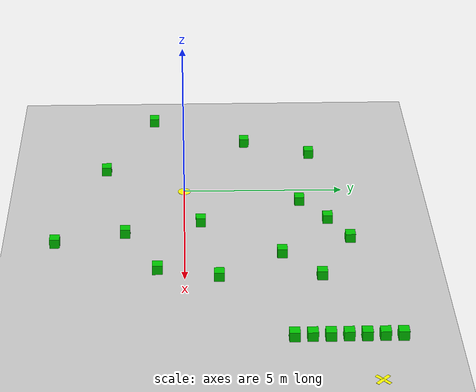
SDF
<sdf version="1.10">
 <world name="random_boxes_world">
  <plugin filename="gz-sim-physics-system" name="gz::sim::systems::Physics"/>
  <plugin filename="gz-sim-user-commands-system" name="gz::sim::systems::UserCommands"/>
  <plugin filename="gz-sim-scene-broadcaster-system" name="gz::sim::systems::SceneBroadcaster"/>
  <plugin filename="gz-sim-sensors-system" name="gz::sim::systems::Sensors">
   <render_engine>ogre2</render_engine>
  </plugin>
  <plugin filename="gz-sim-imu-system" name="gz::sim::systems::Imu"/>
  <plugin filename="gz-sim-magnetometer-system" name="gz::sim::systems::Magnetometer"/>
  <plugin filename="gz-sim-navsat-system" name="gz::sim::systems::NavSat"/>
  <spherical_coordinates>
   <surface_model>EARTH_WGS84</surface_model>
   <latitude_deg>-25.33057507763572</latitude_deg>
   <longitude_deg>-57.51813474688503</longitude_deg>
   <elevation>80.0</elevation>
   <heading_deg>0</heading_deg>
  </spherical_coordinates>
  <physics name="1ms" type="ignored">
   <max_step_size>0.001</max_step_size>
   <real_time_factor>1</real_time_factor>
   <real_time_update_rate>1000</real_time_update_rate>
  </physics>
  <gravity>0 0 -9.8</gravity>
  <scene><ambient>0.4 0.4 0.4 1</ambient><background>0.7 0.7 0.7 1</background><shadows>true</shadows></scene>
  <model name="ground_plane">
   <static>true</static>
   <link name="link">
    <collision name="collision">
     <geometry><plane><normal>0 0 1</normal><size>100 100</size></plane></geometry>
    </collision>
    <visual name="visual">
     <geometry><plane><normal>0 0 1</normal><size>100 100</size></plane></geometry>
     <material><diffuse>0.8 0.8 0.8 1</diffuse></material>
    </visual>
   </link>
  </model>
  <model name="box_A">
   <static>true</static>
   <pose>-3 2 0.15 0 0 0</pose>
   <link name="link">
    <collision name="collision"><geometry><box><size>0.3 0.3 0.3</size></box></geometry></collision>
    <visual name="visual">
     <geometry><box><size>0.3 0.3 0.3</size></box></geometry>
     <material><diffuse>0 0.8 0 1</diffuse></material>
    </visual>
   </link>
  </model>
  <model name="box_B">
   <static>true</static>
   <pose>-1.2 -2.5 0.15 0 0 0</pose>
   <link name="link">
    <collision name="collision"><geometry><box><size>0.3 0.3 0.3</size></box></geometry></collision>
    <visual name="visual">
     <geometry><box><size>0.3 0.3 0.3</size></box></geometry>
     <material><diffuse>0 0.8 0 1</diffuse></material>
    </visual>
   </link>
  </model>
  <model name="box_C">
   <static>true</static>
   <pose>2.6 -1.8 0.15 0 0 0</pose>
   <link name="link">
    <collision name="collision"><geometry><box><size>0.3 0.3 0.3</size></box></geometry></collision>
    <visual name="visual">
     <geometry><box><size>0.3 0.3 0.3</size></box></geometry>
     <material><diffuse>0 0.8 0 1</diffuse></material>
    </visual>
   </link>
  </model>
  <model name="box_D">
   <static>true</static>
   <pose>3.8 2.9 0.15 0 0 0</pose>
   <link name="link">
    <collision name="collision"><geometry><box><size>0.3 0.3 0.3</size></box></geometry></collision>
    <visual name="visual">
     <geometry><box><size>0.3 0.3 0.3</size></box></geometry>
     <material><diffuse>0 0.8 0 1</diffuse></material>
    </visual>
   </link>
  </model>
  <model name="box_E">
   <static>true</static>
   <pose>0.8 3.6 0.15 0 0 0</pose>
   <link name="link">
    <collision name="collision"><geometry><box><size>0.3 0.3 0.3</size></box></geometry></collision>
    <visual name="visual">
     <geometry><box><size>0.3 0.3 0.3</size></box></geometry>
     <material><diffuse>0 0.8 0 1</diffuse></material>
    </visual>
   </link>
  </model>
  <model name="box_F">
   <static>true</static>
   <pose>-4.5 -1.0 0.15 0 0 0</pose>
   <link name="link">
    <collision name="collision"><geometry><box><size>0.3 0.3 0.3</size></box></geometry></collision>
    <visual name="visual">
     <geometry><box><size>0.3 0.3 0.3</size></box></geometry>
     <material><diffuse>0 0.8 0 1</diffuse></material>
    </visual>
   </link>
  </model>
  <model name="box_G">
   <static>true</static>
   <pose>-2.2 4.1 0.15 0 0 0</pose>
   <link name="link">
    <collision name="collision"><geometry><box><size>0.3 0.3 0.3</size></box></geometry></collision>
    <visual name="visual">
     <geometry><box><size>0.3 0.3 0.3</size></box></geometry>
     <material><diffuse>0 0.8 0 1</diffuse></material>
    </visual>
   </link>
  </model>
  <model name="box_H">
   <static>true</static>
   <pose>1.9 4.4 0.15 0 0 0</pose>
   <link name="link">
    <collision name="collision"><geometry><box><size>0.3 0.3 0.3</size></box></geometry></collision>
    <visual name="visual">
     <geometry><box><size>0.3 0.3 0.3</size></box></geometry>
     <material><diffuse>0 0.8 0 1</diffuse></material>
    </visual>
   </link>
  </model>
  <model name="box_I">
   <static>true</static>
   <pose>4.6 -0.8 0.15 0 0 0</pose>
   <link name="link">
    <collision name="collision"><geometry><box><size>0.3 0.3 0.3</size></box></geometry></collision>
    <visual name="visual">
     <geometry><box><size>0.3 0.3 0.3</size></box></geometry>
     <material><diffuse>0 0.8 0 1</diffuse></material>
    </visual>
   </link>
  </model>
  <model name="box_J">
   <static>true</static>
   <pose>3.1 -3.9 0.15 0 0 0</pose>
   <link name="link">
    <collision name="collision"><geometry><box><size>0.3 0.3 0.3</size></box></geometry></collision>
    <visual name="visual">
     <geometry><box><size>0.3 0.3 0.3</size></box></geometry>
     <material><diffuse>0 0.8 0 1</diffuse></material>
    </visual>
   </link>
  </model>
  <model name="box_K">
   <static>true</static>
   <pose>2 0.5 0.15 0 0 0</pose>
   <link name="link">
    <collision name="collision"><geometry><box><size>0.3 0.3 0.3</size></box></geometry></collision>
    <visual name="visual">
     <geometry><box><size>0.3 0.3 0.3</size></box></geometry>
     <material><diffuse>0 0.8 0 1</diffuse></material>
    </visual>
   </link>
  </model>
  <model name="box_l">
   <static>true</static>
   <pose>5 4 0.15 0 0 0</pose>
   <link name="link">
    <collision name="collision"><geometry><box><size>0.3 0.3 0.3</size></box></geometry></collision>
    <visual name="visual">
     <geometry><box><size>0.3 0.3 0.3</size></box></geometry>
     <material><diffuse>0 0.8 0 1</diffuse></material>
    </visual>
   </link>
  </model>
  <model name="box_m">
   <static>true</static>
   <pose>8 5 0.15 0 0 0</pose>
   <link name="link">
    <collision name="collision"><geometry><box><size>0.3 0.3 0.3</size></box></geometry></collision>
    <visual name="visual">
     <geometry><box><size>0.3 0.3 0.3</size></box></geometry>
     <material><diffuse>0 0.8 0 1</diffuse></material>
    </visual>
   </link>
  </model>
  <model name="box_n">
   <static>true</static>
   <pose>8 4.5 0.15 0 0 0</pose>
   <link name="link">
    <collision name="collision"><geometry><box><size>0.3 0.3 0.3</size></box></geometry></collision>
    <visual name="visual">
     <geometry><box><size>0.3 0.3 0.3</size></box></geometry>
     <material><diffuse>0 0.8 0 1</diffuse></material>
    </visual>
   </link>
  </model>
  <model name="box_p">
   <static>true</static>
   <pose>8 5.5 0.15 0 0 0</pose>
   <link name="link">
    <collision name="collision"><geometry><box><size>0.3 0.3 0.3</size></box></geometry></collision>
    <visual name="visual">
     <geometry><box><size>0.3 0.3 0.3</size></box></geometry>
     <material><diffuse>0 0.8 0 1</diffuse></material>
    </visual>
   </link>
  </model>
  <model name="box_q">
   <static>true</static>
   <pose>8 6 0.15 0 0 0</pose>
   <link name="link">
    <collision name="collision"><geometry><box><size>0.3 0.3 0.3</size></box></geometry></collision>
    <visual name="visual">
     <geometry><box><size>0.3 0.3 0.3</size></box></geometry>
     <material><diffuse>0 0.8 0 1</diffuse></material>
    </visual>
   </link>
  </model>
  <model name="box_r">
   <static>true</static>
   <pose>8 4 0.15 0 0 0</pose>
   <link name="link">
    <collision name="collision"><geometry><box><size>0.3 0.3 0.3</size></box></geometry></collision>
    <visual name="visual">
     <geometry><box><size>0.3 0.3 0.3</size></box></geometry>
     <material><diffuse>0 0.8 0 1</diffuse></material>
    </visual>
   </link>
  </model>
  <model name="box_s">
   <static>true</static>
   <pose>8 3.5 0.15 0 0 0</pose>
   <link name="link">
    <collision name="collision"><geometry><box><size>0.3 0.3 0.3</size></box></geometry></collision>
    <visual name="visual">
     <geometry><box><size>0.3 0.3 0.3</size></box></geometry>
     <material><diffuse>0 0.8 0 1</diffuse></material>
    </visual>
   </link>
  </model>
  <model name="box_t">
   <static>true</static>
   <pose>8 3 0.15 0 0 0</pose>
   <link name="link">
    <collision name="collision"><geometry><box><size>0.3 0.3 0.3</size></box></geometry></collision>
    <visual name="visual">
     <geometry><box><size>0.3 0.3 0.3</size></box></geometry>
     <material><diffuse>0 0.8 0 1</diffuse></material>
    </visual>
   </link>
  </model>
  <model name="box_v">
   <static>true</static>
   <pose>5 1 0.15 0 0 0</pose>
   <link name="link">
    <collision name="collision"><geometry><box><size>0.3 0.3 0.3</size></box></geometry></collision>
    <visual name="visual">
     <geometry><box><size>0.3 0.3 0.3</size></box></geometry>
     <material><diffuse>0 0.8 0 1</diffuse></material>
    </visual>
   </link>
  </model>
  <model name="box_w">
   <static>true</static>
   <pose>3 5 0.15 0 0 0</pose>
   <link name="link">
    <collision name="collision"><geometry><box><size>0.3 0.3 0.3</size></box></geometry></collision>
    <visual name="visual">
     <geometry><box><size>0.3 0.3 0.3</size></box></geometry>
     <material><diffuse>0 0.8 0 1</diffuse></material>
    </visual>
   </link>
  </model>
  <model name="origin_marker">
   <static>true</static>
   <pose>0 0 0.001 0 0 0</pose>
   <link name="link">
    <visual name="visual">
     <geometry><cylinder><radius>0.2</radius><length>0.002</length></cylinder></geometry>
     <material><diffuse>1 1 0 1</diffuse></material>
    </visual>
   </link>
  </model>
  <model name="x_marker">
   <static>true</static>
   <pose>9.89  5.23 0.01 0 0 0</pose>
   <link name="link">
    <visual name="bar_1">
     <pose>0 0 0 0 0 0.785398</pose>
     <geometry><box><size>0.5 0.1 0.002</size></box></geometry>
     <material><diffuse>1 1 0 1</diffuse></material>
    </visual>
    <visual name="bar_2">
     <pose>0 0 0 0 0 -0.785398</pose>
     <geometry><box><size>0.5 0.1 0.002</size></box></geometry>
     <material><diffuse>1 1 0 1</diffuse></material>
    </visual>
   </link>
  </model>
  <light name="sun" type="directional">
   <pose>0 0 10 0 0 0</pose>
   <direction>-0.5 0.1 -0.9</direction>
   <diffuse>0.8 0.8 0.8 1</diffuse>
   <specular>0.2 0.2 0.2 1</specular>
  </light>
 </world>
</sdf>
